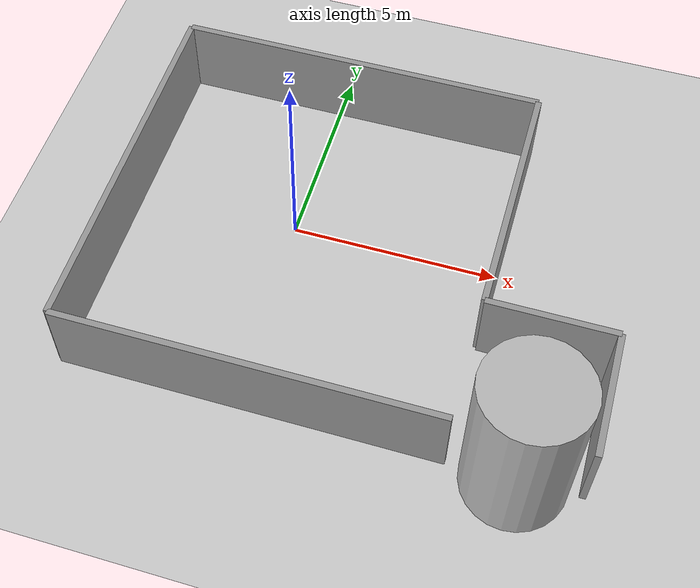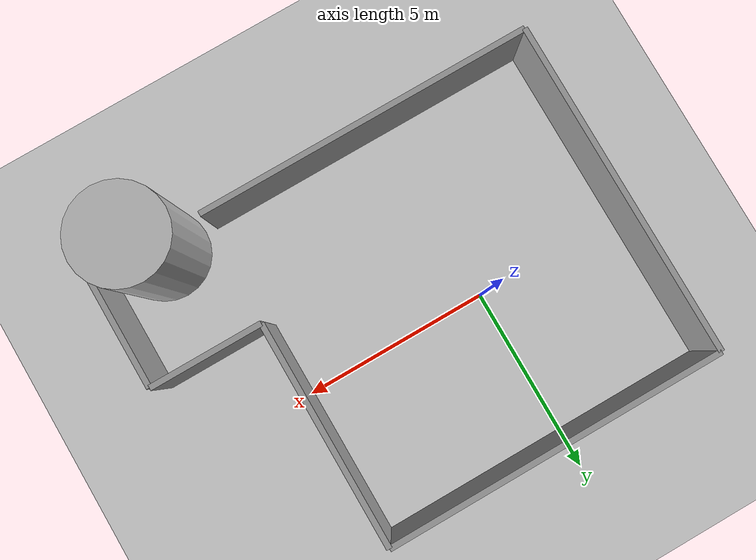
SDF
<sdf version="1.4">
  <world name="default">

    <scene>
      <ambient>0.4 0.4 0.4 1</ambient>
      <background>0.7 0.7 0.7 1</background>
      <shadows>true</shadows>
    </scene>

    <!-- A global light source -->
    <include>
      <uri>model://sun</uri>
    </include>

    <!-- A ground plane -->
    <include>
      <uri>model://ground_plane</uri>
    </include>

    <physics type="ode">
      <real_time_update_rate>1000.0</real_time_update_rate>
      <max_step_size>0.001</max_step_size>
      <real_time_factor>1</real_time_factor>
      <ode>
        <solver>
          <type>quick</type>
          <iters>150</iters>
          <precon_iters>0</precon_iters>
          <sor>1.400000</sor>
          <use_dynamic_moi_rescaling>1</use_dynamic_moi_rescaling>
        </solver>
        <constraints>
          <cfm>0.00001</cfm>
          <erp>0.2</erp>
          <contact_max_correcting_vel>2000.000000</contact_max_correcting_vel>
          <contact_surface_layer>0.01000</contact_surface_layer>
        </constraints>
      </ode>
    </physics>

    <model name='mini_prj_bachelors'>
      <link name='Wall_1'>
        <collision name='Wall_1_Collision'>
          <geometry>
            <box>
              <size>6 0.15 2</size>
            </box>
          </geometry>
          <pose frame=''>0 0 1 0 -0 0</pose>
        </collision>
        <visual name='Wall_1_Visual'>
          <pose frame=''>0 0 1 0 -0 0</pose>
          <geometry>
            <box>
              <size>6 0.15 2</size>
            </box>
          </geometry>
          <material>
            <script>
              <uri>file://media/materials/scripts/gazebo.material</uri>
              <name>Gazebo/Grey</name>
            </script>
            <ambient>1 1 1 1</ambient>
          </material>
        </visual>
        <pose frame=''>5 1 0 0 -0 1.5708</pose>
      </link>
      <link name='Wall_2'>
        <pose frame=''>6.5 -2 0 0 -0 0</pose>
        <collision name='Wall_2_Collision'>
          <geometry>
            <box>
              <size>3 0.15 2</size>
            </box>
          </geometry>
          <pose frame=''>0 0 1 0 -0 0</pose>
        </collision>
        <visual name='Wall_2_Visual'>
          <pose frame=''>0 0 1 0 -0 0</pose>
          <geometry>
            <box>
              <size>3 0.15 2</size>
            </box>
          </geometry>
          <material>
            <script>
              <uri>file://media/materials/scripts/gazebo.material</uri>
              <name>Gazebo/Grey</name>
            </script>
            <ambient>1 1 1 1</ambient>
          </material>
        </visual>
      </link>
      <link name='Wall_3'>
        <pose frame=''>8 -3.5 0 0 -0 1.5708</pose>
        <collision name='Wall_3_Collision'>
          <geometry>
            <box>
              <size>3 0.15 2</size>
            </box>
          </geometry>
          <pose frame=''>0 0 1 0 -0 0</pose>
        </collision>
        <visual name='Wall_3_Visual'>
          <pose frame=''>0 0 1 0 -0 0</pose>
          <geometry>
            <box>
              <size>3 0.15 2</size>
            </box>
          </geometry>
          <material>
            <script>
              <uri>file://media/materials/scripts/gazebo.material</uri>
              <name>Gazebo/Grey</name>
            </script>
            <ambient>1 1 1 1</ambient>
          </material>
        </visual>
      </link>
      <link name='Wall_4'>
        <collision name='Wall_4_Collision'>
          <geometry>
            <box>
              <size>9 0.15 2</size>
            </box>
          </geometry>
          <pose frame=''>0 0 1 0 -0 0</pose>
        </collision>
        <visual name='Wall_4_Visual'>
          <pose frame=''>0 0 1 0 -0 0</pose>
          <geometry>
            <box>
              <size>9 0.15 2</size>
            </box>
          </geometry>
          <material>
            <script>
              <uri>file://media/materials/scripts/gazebo.material</uri>
              <name>Gazebo/Grey</name>
            </script>
            <ambient>1 1 1 1</ambient>
          </material>
        </visual>
        <pose frame=''>-4 -0.5 0 0 -0 1.5708</pose>
      </link>
      <link name='Wall_5'>
        <collision name='Wall_5_Collision'>
          <geometry>
            <box>
              <size>9 0.15 2</size>
            </box>
          </geometry>
          <pose frame=''>0 0 1 0 -0 0</pose>
        </collision>
        <visual name='Wall_5_Visual'>
          <pose frame=''>0 0 1 0 -0 0</pose>
          <geometry>
            <box>
              <size>9 0.15 2</size>
            </box>
          </geometry>
          <material>
            <script>
              <uri>file://media/materials/scripts/gazebo.material</uri>
              <name>Gazebo/Grey</name>
            </script>
            <ambient>1 1 1 1</ambient>
          </material>
        </visual>
        <pose frame=''>0.5 -5 0 0 -0 0</pose>
      </link>
      <link name='Wall_6'>
        <collision name='Wall_6_Collision'>
          <geometry>
            <box>
              <size>9 0.15 2</size>
            </box>
          </geometry>
          <pose frame=''>0 0 1 0 -0 0</pose>
        </collision>
        <visual name='Wall_6_Visual'>
          <pose frame=''>0 0 1 0 -0 0</pose>
          <geometry>
            <box>
              <size>9 0.15 2</size>
            </box>
          </geometry>
          <material>
            <script>
              <uri>file://media/materials/scripts/gazebo.material</uri>
              <name>Gazebo/Grey</name>
            </script>
            <ambient>1 1 1 1</ambient>
          </material>
        </visual>
        <pose frame=''>0.5 4 0 0 -0 0</pose>
      </link>

      <static>1</static>
    </model>

    <model name="obstacle">
      <static>true</static>
      <pose frame=''>6.5 -5 2 0 0 0</pose>
      <link name="slurp">
        <collision name='obstacle_Collision'>
          <geometry>
            <cylinder>
              <radius>1.2</radius>
              <length>4</length>
            </cylinder>
          </geometry>
          <pose frame=''>0 0 0 0 0 0</pose>
        </collision>
        <visual name="obstacle_Visual">
          <pose frame=''>0 0 0 0 0 0</pose>
          <geometry>
            <cylinder>
              <radius>1.2</radius>
              <length>4</length>
            </cylinder>
          </geometry>
          <material>
            <script>
              <uri>model://beer/materials/scripts</uri>
              <uri>model://beer/materials/textures</uri>
              <name>Beer/Diffuse</name>
            </script>
          </material>
        </visual>
      </link>
    </model>
  </world>
</sdf>
